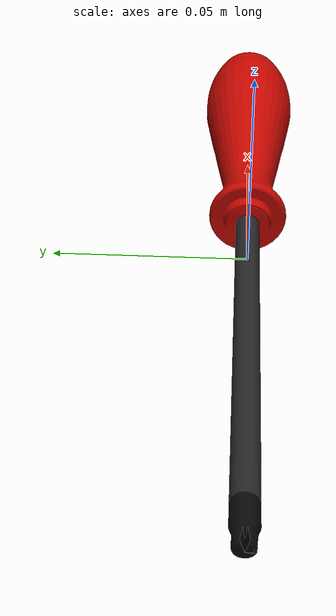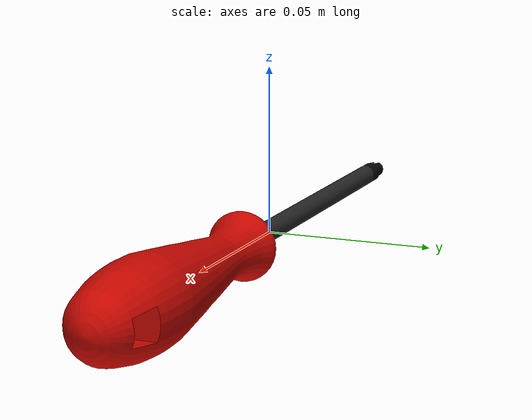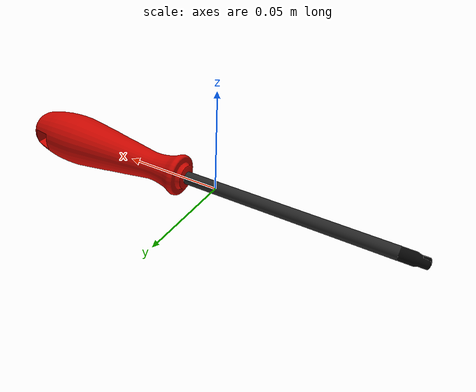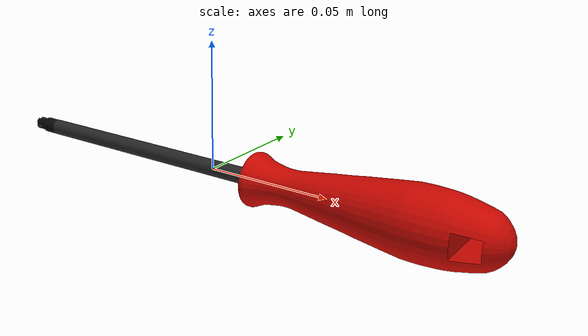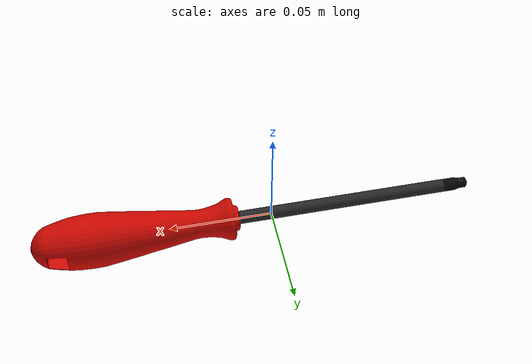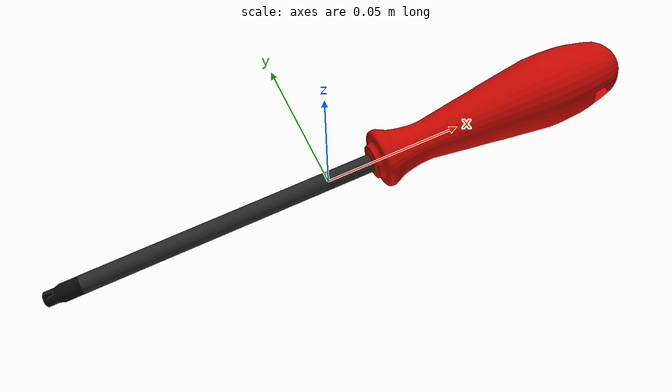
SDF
<?xml version='1.0'?>
<sdf version='1.6'>
  <model name='jsk_screw_driver'>
    <link name='link_0'>
      <inertial>
        <mass>0.5</mass>
        <pose> 0.02 0 0 0 0 0</pose>
        <inertia>
          <ixx>6.0e-5</ixx>
          <iyy>2.0e-3</iyy>
          <izz>2.0e-3</izz>
          <ixy>0</ixy>
          <ixz>0</ixz>
          <iyz>0</iyz>
        </inertia>
      </inertial>
      <visual name='visual'>
        <pose>0 0 -0.002 0 0 0 </pose>
        <geometry>
          <mesh>
            <uri>model://jsk_screw_driver/meshes/screwdriver.dae</uri>
            <scale>0.026 0.026 0.026</scale>
          </mesh>
        </geometry>
      </visual>

      <collision name='simple_0'>
        <laser_retro>0</laser_retro>
        <max_contacts>10</max_contacts>
        <pose> 0.065 0 0 0 1.57079632679490 0</pose>
        <geometry>
          <cylinder>
            <radius>0.0135</radius>
            <length>0.1 </length>
          </cylinder>
        </geometry>
      </collision>
      <collision name='simple_1'>
        <laser_retro>0</laser_retro>
        <max_contacts>10</max_contacts>
        <pose> -0.04 0 0 0 1.57079632679490 0</pose>
        <geometry>
          <cylinder>
            <radius>0.0025</radius>
            <length>0.12 </length>
          </cylinder>
        </geometry>
      </collision>
    </link>
  </model>
</sdf>
